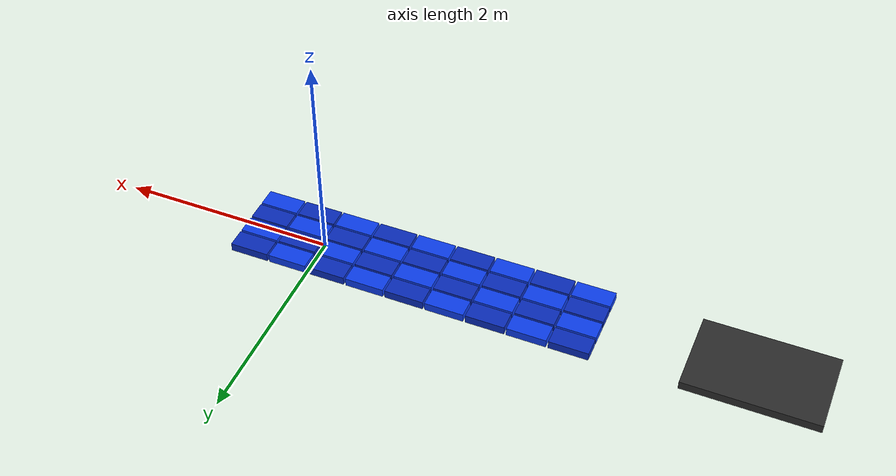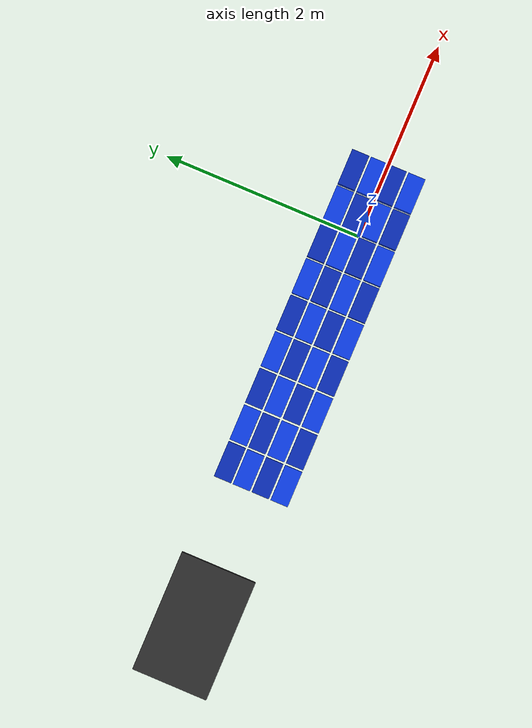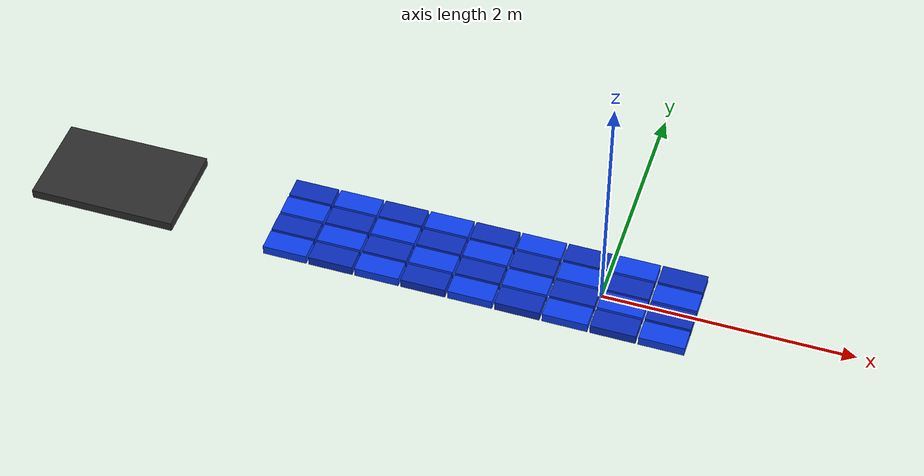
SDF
<sdf version="1.10">
 <world name="matrix_14x4_stream">
  <model name="infeed_conveyor">
   <static>true</static>
   <pose>-4.030000 0.000000 0 0 0 0</pose>
   <link name="belt">
    <pose>0 0 0.040000 0 0 0</pose>
    <collision name="belt_collision">
     <max_contacts>8</max_contacts>
     <geometry><box><size>1.200000 0.760000 0.080000</size></box></geometry>
     <surface><friction><ode><mu>0.8</mu><mu2>0.8</mu2><fdir1>1 0 0</fdir1></ode></friction></surface>
    </collision>
    <visual name="belt_visual">
     <geometry><box><size>1.200000 0.760000 0.080000</size></box></geometry>
     <material><ambient>0.180 0.180 0.180 1</ambient><diffuse>0.180 0.180 0.180 1</diffuse></material>
    </visual>
   </link>
   <plugin filename="gz-sim-track-controller-system" name="gz::sim::systems::TrackController">
    <link>belt</link>
    <track_orientation>0 0 0</track_orientation>
    <velocity_topic>/singulator/infeed/cmd_vel</velocity_topic>
    <odometry_topic>/singulator/infeed/odometry</odometry_topic>
    <odometry_publish_frequency>1</odometry_publish_frequency>
    <min_velocity>-3.0</min_velocity>
    <max_velocity>3.0</max_velocity>
    <min_acceleration>-6.0</min_acceleration>
    <max_acceleration>6.0</max_acceleration>
    <min_jerk>-30.0</min_jerk>
    <max_jerk>30.0</max_jerk>
    <max_command_age>2.0</max_command_age>
   </plugin>
  </model>
  <model name="cell_r00_c00">
   <static>true</static>
   <pose>-2.470000 -0.292500 0 0 0 0</pose>
   <link name="belt">
    <pose>0 0 0.040000 0 0 0</pose>
    <collision name="belt_collision">
     <max_contacts>8</max_contacts>
     <geometry><box><size>0.360000 0.175000 0.080000</size></box></geometry>
     <surface><friction><ode><mu>0.8</mu><mu2>0.8</mu2><fdir1>1 0 0</fdir1></ode></friction></surface>
    </collision>
    <visual name="belt_visual">
     <geometry><box><size>0.360000 0.175000 0.080000</size></box></geometry>
     <material><ambient>0.050 0.250 0.950 1</ambient><diffuse>0.050 0.250 0.950 1</diffuse></material>
    </visual>
   </link>
   <plugin filename="gz-sim-track-controller-system" name="gz::sim::systems::TrackController">
    <link>belt</link>
    <track_orientation>0 0 0</track_orientation>
    <velocity_topic>/singulator/cell/r00_c00/cmd_vel</velocity_topic>
    <odometry_topic>/singulator/cell/r00_c00/odometry</odometry_topic>
    <odometry_publish_frequency>1</odometry_publish_frequency>
    <min_velocity>-3.0</min_velocity>
    <max_velocity>3.0</max_velocity>
    <min_acceleration>-6.0</min_acceleration>
    <max_acceleration>6.0</max_acceleration>
    <min_jerk>-30.0</min_jerk>
    <max_jerk>30.0</max_jerk>
    <max_command_age>2.0</max_command_age>
   </plugin>
  </model>
  <model name="cell_r00_c01">
   <static>true</static>
   <pose>-2.470000 -0.097500 0 0 0 0</pose>
   <link name="belt">
    <pose>0 0 0.040000 0 0 0</pose>
    <collision name="belt_collision">
     <max_contacts>8</max_contacts>
     <geometry><box><size>0.360000 0.175000 0.080000</size></box></geometry>
     <surface><friction><ode><mu>0.8</mu><mu2>0.8</mu2><fdir1>1 0 0</fdir1></ode></friction></surface>
    </collision>
    <visual name="belt_visual">
     <geometry><box><size>0.360000 0.175000 0.080000</size></box></geometry>
     <material><ambient>0.040 0.180 0.750 1</ambient><diffuse>0.040 0.180 0.750 1</diffuse></material>
    </visual>
   </link>
   <plugin filename="gz-sim-track-controller-system" name="gz::sim::systems::TrackController">
    <link>belt</link>
    <track_orientation>0 0 0</track_orientation>
    <velocity_topic>/singulator/cell/r00_c01/cmd_vel</velocity_topic>
    <odometry_topic>/singulator/cell/r00_c01/odometry</odometry_topic>
    <odometry_publish_frequency>1</odometry_publish_frequency>
    <min_velocity>-3.0</min_velocity>
    <max_velocity>3.0</max_velocity>
    <min_acceleration>-6.0</min_acceleration>
    <max_acceleration>6.0</max_acceleration>
    <min_jerk>-30.0</min_jerk>
    <max_jerk>30.0</max_jerk>
    <max_command_age>2.0</max_command_age>
   </plugin>
  </model>
  <model name="cell_r00_c02">
   <static>true</static>
   <pose>-2.470000 0.097500 0 0 0 0</pose>
   <link name="belt">
    <pose>0 0 0.040000 0 0 0</pose>
    <collision name="belt_collision">
     <max_contacts>8</max_contacts>
     <geometry><box><size>0.360000 0.175000 0.080000</size></box></geometry>
     <surface><friction><ode><mu>0.8</mu><mu2>0.8</mu2><fdir1>1 0 0</fdir1></ode></friction></surface>
    </collision>
    <visual name="belt_visual">
     <geometry><box><size>0.360000 0.175000 0.080000</size></box></geometry>
     <material><ambient>0.050 0.250 0.950 1</ambient><diffuse>0.050 0.250 0.950 1</diffuse></material>
    </visual>
   </link>
   <plugin filename="gz-sim-track-controller-system" name="gz::sim::systems::TrackController">
    <link>belt</link>
    <track_orientation>0 0 0</track_orientation>
    <velocity_topic>/singulator/cell/r00_c02/cmd_vel</velocity_topic>
    <odometry_topic>/singulator/cell/r00_c02/odometry</odometry_topic>
    <odometry_publish_frequency>1</odometry_publish_frequency>
    <min_velocity>-3.0</min_velocity>
    <max_velocity>3.0</max_velocity>
    <min_acceleration>-6.0</min_acceleration>
    <max_acceleration>6.0</max_acceleration>
    <min_jerk>-30.0</min_jerk>
    <max_jerk>30.0</max_jerk>
    <max_command_age>2.0</max_command_age>
   </plugin>
  </model>
  <model name="cell_r00_c03">
   <static>true</static>
   <pose>-2.470000 0.292500 0 0 0 0</pose>
   <link name="belt">
    <pose>0 0 0.040000 0 0 0</pose>
    <collision name="belt_collision">
     <max_contacts>8</max_contacts>
     <geometry><box><size>0.360000 0.175000 0.080000</size></box></geometry>
     <surface><friction><ode><mu>0.8</mu><mu2>0.8</mu2><fdir1>1 0 0</fdir1></ode></friction></surface>
    </collision>
    <visual name="belt_visual">
     <geometry><box><size>0.360000 0.175000 0.080000</size></box></geometry>
     <material><ambient>0.040 0.180 0.750 1</ambient><diffuse>0.040 0.180 0.750 1</diffuse></material>
    </visual>
   </link>
   <plugin filename="gz-sim-track-controller-system" name="gz::sim::systems::TrackController">
    <link>belt</link>
    <track_orientation>0 0 0</track_orientation>
    <velocity_topic>/singulator/cell/r00_c03/cmd_vel</velocity_topic>
    <odometry_topic>/singulator/cell/r00_c03/odometry</odometry_topic>
    <odometry_publish_frequency>1</odometry_publish_frequency>
    <min_velocity>-3.0</min_velocity>
    <max_velocity>3.0</max_velocity>
    <min_acceleration>-6.0</min_acceleration>
    <max_acceleration>6.0</max_acceleration>
    <min_jerk>-30.0</min_jerk>
    <max_jerk>30.0</max_jerk>
    <max_command_age>2.0</max_command_age>
   </plugin>
  </model>
  <model name="cell_r01_c00">
   <static>true</static>
   <pose>-2.090000 -0.292500 0 0 0 0</pose>
   <link name="belt">
    <pose>0 0 0.040000 0 0 0</pose>
    <collision name="belt_collision">
     <max_contacts>8</max_contacts>
     <geometry><box><size>0.360000 0.175000 0.080000</size></box></geometry>
     <surface><friction><ode><mu>0.8</mu><mu2>0.8</mu2><fdir1>1 0 0</fdir1></ode></friction></surface>
    </collision>
    <visual name="belt_visual">
     <geometry><box><size>0.360000 0.175000 0.080000</size></box></geometry>
     <material><ambient>0.040 0.180 0.750 1</ambient><diffuse>0.040 0.180 0.750 1</diffuse></material>
    </visual>
   </link>
   <plugin filename="gz-sim-track-controller-system" name="gz::sim::systems::TrackController">
    <link>belt</link>
    <track_orientation>0 0 0</track_orientation>
    <velocity_topic>/singulator/cell/r01_c00/cmd_vel</velocity_topic>
    <odometry_topic>/singulator/cell/r01_c00/odometry</odometry_topic>
    <odometry_publish_frequency>1</odometry_publish_frequency>
    <min_velocity>-3.0</min_velocity>
    <max_velocity>3.0</max_velocity>
    <min_acceleration>-6.0</min_acceleration>
    <max_acceleration>6.0</max_acceleration>
    <min_jerk>-30.0</min_jerk>
    <max_jerk>30.0</max_jerk>
    <max_command_age>2.0</max_command_age>
   </plugin>
  </model>
  <model name="cell_r01_c01">
   <static>true</static>
   <pose>-2.090000 -0.097500 0 0 0 0</pose>
   <link name="belt">
    <pose>0 0 0.040000 0 0 0</pose>
    <collision name="belt_collision">
     <max_contacts>8</max_contacts>
     <geometry><box><size>0.360000 0.175000 0.080000</size></box></geometry>
     <surface><friction><ode><mu>0.8</mu><mu2>0.8</mu2><fdir1>1 0 0</fdir1></ode></friction></surface>
    </collision>
    <visual name="belt_visual">
     <geometry><box><size>0.360000 0.175000 0.080000</size></box></geometry>
     <material><ambient>0.050 0.250 0.950 1</ambient><diffuse>0.050 0.250 0.950 1</diffuse></material>
    </visual>
   </link>
   <plugin filename="gz-sim-track-controller-system" name="gz::sim::systems::TrackController">
    <link>belt</link>
    <track_orientation>0 0 0</track_orientation>
    <velocity_topic>/singulator/cell/r01_c01/cmd_vel</velocity_topic>
    <odometry_topic>/singulator/cell/r01_c01/odometry</odometry_topic>
    <odometry_publish_frequency>1</odometry_publish_frequency>
    <min_velocity>-3.0</min_velocity>
    <max_velocity>3.0</max_velocity>
    <min_acceleration>-6.0</min_acceleration>
    <max_acceleration>6.0</max_acceleration>
    <min_jerk>-30.0</min_jerk>
    <max_jerk>30.0</max_jerk>
    <max_command_age>2.0</max_command_age>
   </plugin>
  </model>
  <model name="cell_r01_c02">
   <static>true</static>
   <pose>-2.090000 0.097500 0 0 0 0</pose>
   <link name="belt">
    <pose>0 0 0.040000 0 0 0</pose>
    <collision name="belt_collision">
     <max_contacts>8</max_contacts>
     <geometry><box><size>0.360000 0.175000 0.080000</size></box></geometry>
     <surface><friction><ode><mu>0.8</mu><mu2>0.8</mu2><fdir1>1 0 0</fdir1></ode></friction></surface>
    </collision>
    <visual name="belt_visual">
     <geometry><box><size>0.360000 0.175000 0.080000</size></box></geometry>
     <material><ambient>0.040 0.180 0.750 1</ambient><diffuse>0.040 0.180 0.750 1</diffuse></material>
    </visual>
   </link>
   <plugin filename="gz-sim-track-controller-system" name="gz::sim::systems::TrackController">
    <link>belt</link>
    <track_orientation>0 0 0</track_orientation>
    <velocity_topic>/singulator/cell/r01_c02/cmd_vel</velocity_topic>
    <odometry_topic>/singulator/cell/r01_c02/odometry</odometry_topic>
    <odometry_publish_frequency>1</odometry_publish_frequency>
    <min_velocity>-3.0</min_velocity>
    <max_velocity>3.0</max_velocity>
    <min_acceleration>-6.0</min_acceleration>
    <max_acceleration>6.0</max_acceleration>
    <min_jerk>-30.0</min_jerk>
    <max_jerk>30.0</max_jerk>
    <max_command_age>2.0</max_command_age>
   </plugin>
  </model>
  <model name="cell_r01_c03">
   <static>true</static>
   <pose>-2.090000 0.292500 0 0 0 0</pose>
   <link name="belt">
    <pose>0 0 0.040000 0 0 0</pose>
    <collision name="belt_collision">
     <max_contacts>8</max_contacts>
     <geometry><box><size>0.360000 0.175000 0.080000</size></box></geometry>
     <surface><friction><ode><mu>0.8</mu><mu2>0.8</mu2><fdir1>1 0 0</fdir1></ode></friction></surface>
    </collision>
    <visual name="belt_visual">
     <geometry><box><size>0.360000 0.175000 0.080000</size></box></geometry>
     <material><ambient>0.050 0.250 0.950 1</ambient><diffuse>0.050 0.250 0.950 1</diffuse></material>
    </visual>
   </link>
   <plugin filename="gz-sim-track-controller-system" name="gz::sim::systems::TrackController">
    <link>belt</link>
    <track_orientation>0 0 0</track_orientation>
    <velocity_topic>/singulator/cell/r01_c03/cmd_vel</velocity_topic>
    <odometry_topic>/singulator/cell/r01_c03/odometry</odometry_topic>
    <odometry_publish_frequency>1</odometry_publish_frequency>
    <min_velocity>-3.0</min_velocity>
    <max_velocity>3.0</max_velocity>
    <min_acceleration>-6.0</min_acceleration>
    <max_acceleration>6.0</max_acceleration>
    <min_jerk>-30.0</min_jerk>
    <max_jerk>30.0</max_jerk>
    <max_command_age>2.0</max_command_age>
   </plugin>
  </model>
  <model name="cell_r02_c00">
   <static>true</static>
   <pose>-1.710000 -0.292500 0 0 0 0</pose>
   <link name="belt">
    <pose>0 0 0.040000 0 0 0</pose>
    <collision name="belt_collision">
     <max_contacts>8</max_contacts>
     <geometry><box><size>0.360000 0.175000 0.080000</size></box></geometry>
     <surface><friction><ode><mu>0.8</mu><mu2>0.8</mu2><fdir1>1 0 0</fdir1></ode></friction></surface>
    </collision>
    <visual name="belt_visual">
     <geometry><box><size>0.360000 0.175000 0.080000</size></box></geometry>
     <material><ambient>0.050 0.250 0.950 1</ambient><diffuse>0.050 0.250 0.950 1</diffuse></material>
    </visual>
   </link>
   <plugin filename="gz-sim-track-controller-system" name="gz::sim::systems::TrackController">
    <link>belt</link>
    <track_orientation>0 0 0</track_orientation>
    <velocity_topic>/singulator/cell/r02_c00/cmd_vel</velocity_topic>
    <odometry_topic>/singulator/cell/r02_c00/odometry</odometry_topic>
    <odometry_publish_frequency>1</odometry_publish_frequency>
    <min_velocity>-3.0</min_velocity>
    <max_velocity>3.0</max_velocity>
    <min_acceleration>-6.0</min_acceleration>
    <max_acceleration>6.0</max_acceleration>
    <min_jerk>-30.0</min_jerk>
    <max_jerk>30.0</max_jerk>
    <max_command_age>2.0</max_command_age>
   </plugin>
  </model>
  <model name="cell_r02_c01">
   <static>true</static>
   <pose>-1.710000 -0.097500 0 0 0 0</pose>
   <link name="belt">
    <pose>0 0 0.040000 0 0 0</pose>
    <collision name="belt_collision">
     <max_contacts>8</max_contacts>
     <geometry><box><size>0.360000 0.175000 0.080000</size></box></geometry>
     <surface><friction><ode><mu>0.8</mu><mu2>0.8</mu2><fdir1>1 0 0</fdir1></ode></friction></surface>
    </collision>
    <visual name="belt_visual">
     <geometry><box><size>0.360000 0.175000 0.080000</size></box></geometry>
     <material><ambient>0.040 0.180 0.750 1</ambient><diffuse>0.040 0.180 0.750 1</diffuse></material>
    </visual>
   </link>
   <plugin filename="gz-sim-track-controller-system" name="gz::sim::systems::TrackController">
    <link>belt</link>
    <track_orientation>0 0 0</track_orientation>
    <velocity_topic>/singulator/cell/r02_c01/cmd_vel</velocity_topic>
    <odometry_topic>/singulator/cell/r02_c01/odometry</odometry_topic>
    <odometry_publish_frequency>1</odometry_publish_frequency>
    <min_velocity>-3.0</min_velocity>
    <max_velocity>3.0</max_velocity>
    <min_acceleration>-6.0</min_acceleration>
    <max_acceleration>6.0</max_acceleration>
    <min_jerk>-30.0</min_jerk>
    <max_jerk>30.0</max_jerk>
    <max_command_age>2.0</max_command_age>
   </plugin>
  </model>
  <model name="cell_r02_c02">
   <static>true</static>
   <pose>-1.710000 0.097500 0 0 0 0</pose>
   <link name="belt">
    <pose>0 0 0.040000 0 0 0</pose>
    <collision name="belt_collision">
     <max_contacts>8</max_contacts>
     <geometry><box><size>0.360000 0.175000 0.080000</size></box></geometry>
     <surface><friction><ode><mu>0.8</mu><mu2>0.8</mu2><fdir1>1 0 0</fdir1></ode></friction></surface>
    </collision>
    <visual name="belt_visual">
     <geometry><box><size>0.360000 0.175000 0.080000</size></box></geometry>
     <material><ambient>0.050 0.250 0.950 1</ambient><diffuse>0.050 0.250 0.950 1</diffuse></material>
    </visual>
   </link>
   <plugin filename="gz-sim-track-controller-system" name="gz::sim::systems::TrackController">
    <link>belt</link>
    <track_orientation>0 0 0</track_orientation>
    <velocity_topic>/singulator/cell/r02_c02/cmd_vel</velocity_topic>
    <odometry_topic>/singulator/cell/r02_c02/odometry</odometry_topic>
    <odometry_publish_frequency>1</odometry_publish_frequency>
    <min_velocity>-3.0</min_velocity>
    <max_velocity>3.0</max_velocity>
    <min_acceleration>-6.0</min_acceleration>
    <max_acceleration>6.0</max_acceleration>
    <min_jerk>-30.0</min_jerk>
    <max_jerk>30.0</max_jerk>
    <max_command_age>2.0</max_command_age>
   </plugin>
  </model>
  <model name="cell_r02_c03">
   <static>true</static>
   <pose>-1.710000 0.292500 0 0 0 0</pose>
   <link name="belt">
    <pose>0 0 0.040000 0 0 0</pose>
    <collision name="belt_collision">
     <max_contacts>8</max_contacts>
     <geometry><box><size>0.360000 0.175000 0.080000</size></box></geometry>
     <surface><friction><ode><mu>0.8</mu><mu2>0.8</mu2><fdir1>1 0 0</fdir1></ode></friction></surface>
    </collision>
    <visual name="belt_visual">
     <geometry><box><size>0.360000 0.175000 0.080000</size></box></geometry>
     <material><ambient>0.040 0.180 0.750 1</ambient><diffuse>0.040 0.180 0.750 1</diffuse></material>
    </visual>
   </link>
   <plugin filename="gz-sim-track-controller-system" name="gz::sim::systems::TrackController">
    <link>belt</link>
    <track_orientation>0 0 0</track_orientation>
    <velocity_topic>/singulator/cell/r02_c03/cmd_vel</velocity_topic>
    <odometry_topic>/singulator/cell/r02_c03/odometry</odometry_topic>
    <odometry_publish_frequency>1</odometry_publish_frequency>
    <min_velocity>-3.0</min_velocity>
    <max_velocity>3.0</max_velocity>
    <min_acceleration>-6.0</min_acceleration>
    <max_acceleration>6.0</max_acceleration>
    <min_jerk>-30.0</min_jerk>
    <max_jerk>30.0</max_jerk>
    <max_command_age>2.0</max_command_age>
   </plugin>
  </model>
  <model name="cell_r03_c00">
   <static>true</static>
   <pose>-1.330000 -0.292500 0 0 0 0</pose>
   <link name="belt">
    <pose>0 0 0.040000 0 0 0</pose>
    <collision name="belt_collision">
     <max_contacts>8</max_contacts>
     <geometry><box><size>0.360000 0.175000 0.080000</size></box></geometry>
     <surface><friction><ode><mu>0.8</mu><mu2>0.8</mu2><fdir1>1 0 0</fdir1></ode></friction></surface>
    </collision>
    <visual name="belt_visual">
     <geometry><box><size>0.360000 0.175000 0.080000</size></box></geometry>
     <material><ambient>0.040 0.180 0.750 1</ambient><diffuse>0.040 0.180 0.750 1</diffuse></material>
    </visual>
   </link>
   <plugin filename="gz-sim-track-controller-system" name="gz::sim::systems::TrackController">
    <link>belt</link>
    <track_orientation>0 0 0</track_orientation>
    <velocity_topic>/singulator/cell/r03_c00/cmd_vel</velocity_topic>
    <odometry_topic>/singulator/cell/r03_c00/odometry</odometry_topic>
    <odometry_publish_frequency>1</odometry_publish_frequency>
    <min_velocity>-3.0</min_velocity>
    <max_velocity>3.0</max_velocity>
    <min_acceleration>-6.0</min_acceleration>
    <max_acceleration>6.0</max_acceleration>
    <min_jerk>-30.0</min_jerk>
    <max_jerk>30.0</max_jerk>
    <max_command_age>2.0</max_command_age>
   </plugin>
  </model>
  <model name="cell_r03_c01">
   <static>true</static>
   <pose>-1.330000 -0.097500 0 0 0 0</pose>
   <link name="belt">
    <pose>0 0 0.040000 0 0 0</pose>
    <collision name="belt_collision">
     <max_contacts>8</max_contacts>
     <geometry><box><size>0.360000 0.175000 0.080000</size></box></geometry>
     <surface><friction><ode><mu>0.8</mu><mu2>0.8</mu2><fdir1>1 0 0</fdir1></ode></friction></surface>
    </collision>
    <visual name="belt_visual">
     <geometry><box><size>0.360000 0.175000 0.080000</size></box></geometry>
     <material><ambient>0.050 0.250 0.950 1</ambient><diffuse>0.050 0.250 0.950 1</diffuse></material>
    </visual>
   </link>
   <plugin filename="gz-sim-track-controller-system" name="gz::sim::systems::TrackController">
    <link>belt</link>
    <track_orientation>0 0 0</track_orientation>
    <velocity_topic>/singulator/cell/r03_c01/cmd_vel</velocity_topic>
    <odometry_topic>/singulator/cell/r03_c01/odometry</odometry_topic>
    <odometry_publish_frequency>1</odometry_publish_frequency>
    <min_velocity>-3.0</min_velocity>
    <max_velocity>3.0</max_velocity>
    <min_acceleration>-6.0</min_acceleration>
    <max_acceleration>6.0</max_acceleration>
    <min_jerk>-30.0</min_jerk>
    <max_jerk>30.0</max_jerk>
    <max_command_age>2.0</max_command_age>
   </plugin>
  </model>
  <model name="cell_r03_c02">
   <static>true</static>
   <pose>-1.330000 0.097500 0 0 0 0</pose>
   <link name="belt">
    <pose>0 0 0.040000 0 0 0</pose>
    <collision name="belt_collision">
     <max_contacts>8</max_contacts>
     <geometry><box><size>0.360000 0.175000 0.080000</size></box></geometry>
     <surface><friction><ode><mu>0.8</mu><mu2>0.8</mu2><fdir1>1 0 0</fdir1></ode></friction></surface>
    </collision>
    <visual name="belt_visual">
     <geometry><box><size>0.360000 0.175000 0.080000</size></box></geometry>
     <material><ambient>0.040 0.180 0.750 1</ambient><diffuse>0.040 0.180 0.750 1</diffuse></material>
    </visual>
   </link>
   <plugin filename="gz-sim-track-controller-system" name="gz::sim::systems::TrackController">
    <link>belt</link>
    <track_orientation>0 0 0</track_orientation>
    <velocity_topic>/singulator/cell/r03_c02/cmd_vel</velocity_topic>
    <odometry_topic>/singulator/cell/r03_c02/odometry</odometry_topic>
    <odometry_publish_frequency>1</odometry_publish_frequency>
    <min_velocity>-3.0</min_velocity>
    <max_velocity>3.0</max_velocity>
    <min_acceleration>-6.0</min_acceleration>
    <max_acceleration>6.0</max_acceleration>
    <min_jerk>-30.0</min_jerk>
    <max_jerk>30.0</max_jerk>
    <max_command_age>2.0</max_command_age>
   </plugin>
  </model>
  <model name="cell_r03_c03">
   <static>true</static>
   <pose>-1.330000 0.292500 0 0 0 0</pose>
   <link name="belt">
    <pose>0 0 0.040000 0 0 0</pose>
    <collision name="belt_collision">
     <max_contacts>8</max_contacts>
     <geometry><box><size>0.360000 0.175000 0.080000</size></box></geometry>
     <surface><friction><ode><mu>0.8</mu><mu2>0.8</mu2><fdir1>1 0 0</fdir1></ode></friction></surface>
    </collision>
    <visual name="belt_visual">
     <geometry><box><size>0.360000 0.175000 0.080000</size></box></geometry>
     <material><ambient>0.050 0.250 0.950 1</ambient><diffuse>0.050 0.250 0.950 1</diffuse></material>
    </visual>
   </link>
   <plugin filename="gz-sim-track-controller-system" name="gz::sim::systems::TrackController">
    <link>belt</link>
    <track_orientation>0 0 0</track_orientation>
    <velocity_topic>/singulator/cell/r03_c03/cmd_vel</velocity_topic>
    <odometry_topic>/singulator/cell/r03_c03/odometry</odometry_topic>
    <odometry_publish_frequency>1</odometry_publish_frequency>
    <min_velocity>-3.0</min_velocity>
    <max_velocity>3.0</max_velocity>
    <min_acceleration>-6.0</min_acceleration>
    <max_acceleration>6.0</max_acceleration>
    <min_jerk>-30.0</min_jerk>
    <max_jerk>30.0</max_jerk>
    <max_command_age>2.0</max_command_age>
   </plugin>
  </model>
  <model name="cell_r04_c00">
   <static>true</static>
   <pose>-0.950000 -0.292500 0 0 0 0</pose>
   <link name="belt">
    <pose>0 0 0.040000 0 0 0</pose>
    <collision name="belt_collision">
     <max_contacts>8</max_contacts>
     <geometry><box><size>0.360000 0.175000 0.080000</size></box></geometry>
     <surface><friction><ode><mu>0.8</mu><mu2>0.8</mu2><fdir1>1 0 0</fdir1></ode></friction></surface>
    </collision>
    <visual name="belt_visual">
     <geometry><box><size>0.360000 0.175000 0.080000</size></box></geometry>
     <material><ambient>0.050 0.250 0.950 1</ambient><diffuse>0.050 0.250 0.950 1</diffuse></material>
    </visual>
   </link>
   <plugin filename="gz-sim-track-controller-system" name="gz::sim::systems::TrackController">
    <link>belt</link>
    <track_orientation>0 0 0</track_orientation>
    <velocity_topic>/singulator/cell/r04_c00/cmd_vel</velocity_topic>
    <odometry_topic>/singulator/cell/r04_c00/odometry</odometry_topic>
    <odometry_publish_frequency>1</odometry_publish_frequency>
    <min_velocity>-3.0</min_velocity>
    <max_velocity>3.0</max_velocity>
    <min_acceleration>-6.0</min_acceleration>
    <max_acceleration>6.0</max_acceleration>
    <min_jerk>-30.0</min_jerk>
    <max_jerk>30.0</max_jerk>
    <max_command_age>2.0</max_command_age>
   </plugin>
  </model>
  <model name="cell_r04_c01">
   <static>true</static>
   <pose>-0.950000 -0.097500 0 0 0 0</pose>
   <link name="belt">
    <pose>0 0 0.040000 0 0 0</pose>
    <collision name="belt_collision">
     <max_contacts>8</max_contacts>
     <geometry><box><size>0.360000 0.175000 0.080000</size></box></geometry>
     <surface><friction><ode><mu>0.8</mu><mu2>0.8</mu2><fdir1>1 0 0</fdir1></ode></friction></surface>
    </collision>
    <visual name="belt_visual">
     <geometry><box><size>0.360000 0.175000 0.080000</size></box></geometry>
     <material><ambient>0.040 0.180 0.750 1</ambient><diffuse>0.040 0.180 0.750 1</diffuse></material>
    </visual>
   </link>
   <plugin filename="gz-sim-track-controller-system" name="gz::sim::systems::TrackController">
    <link>belt</link>
    <track_orientation>0 0 0</track_orientation>
    <velocity_topic>/singulator/cell/r04_c01/cmd_vel</velocity_topic>
    <odometry_topic>/singulator/cell/r04_c01/odometry</odometry_topic>
    <odometry_publish_frequency>1</odometry_publish_frequency>
    <min_velocity>-3.0</min_velocity>
    <max_velocity>3.0</max_velocity>
    <min_acceleration>-6.0</min_acceleration>
    <max_acceleration>6.0</max_acceleration>
    <min_jerk>-30.0</min_jerk>
    <max_jerk>30.0</max_jerk>
    <max_command_age>2.0</max_command_age>
   </plugin>
  </model>
  <model name="cell_r04_c02">
   <static>true</static>
   <pose>-0.950000 0.097500 0 0 0 0</pose>
   <link name="belt">
    <pose>0 0 0.040000 0 0 0</pose>
    <collision name="belt_collision">
     <max_contacts>8</max_contacts>
     <geometry><box><size>0.360000 0.175000 0.080000</size></box></geometry>
     <surface><friction><ode><mu>0.8</mu><mu2>0.8</mu2><fdir1>1 0 0</fdir1></ode></friction></surface>
    </collision>
    <visual name="belt_visual">
     <geometry><box><size>0.360000 0.175000 0.080000</size></box></geometry>
     <material><ambient>0.050 0.250 0.950 1</ambient><diffuse>0.050 0.250 0.950 1</diffuse></material>
    </visual>
   </link>
   <plugin filename="gz-sim-track-controller-system" name="gz::sim::systems::TrackController">
    <link>belt</link>
    <track_orientation>0 0 0</track_orientation>
    <velocity_topic>/singulator/cell/r04_c02/cmd_vel</velocity_topic>
    <odometry_topic>/singulator/cell/r04_c02/odometry</odometry_topic>
    <odometry_publish_frequency>1</odometry_publish_frequency>
    <min_velocity>-3.0</min_velocity>
    <max_velocity>3.0</max_velocity>
    <min_acceleration>-6.0</min_acceleration>
    <max_acceleration>6.0</max_acceleration>
    <min_jerk>-30.0</min_jerk>
    <max_jerk>30.0</max_jerk>
    <max_command_age>2.0</max_command_age>
   </plugin>
  </model>
  <model name="cell_r04_c03">
   <static>true</static>
   <pose>-0.950000 0.292500 0 0 0 0</pose>
   <link name="belt">
    <pose>0 0 0.040000 0 0 0</pose>
    <collision name="belt_collision">
     <max_contacts>8</max_contacts>
     <geometry><box><size>0.360000 0.175000 0.080000</size></box></geometry>
     <surface><friction><ode><mu>0.8</mu><mu2>0.8</mu2><fdir1>1 0 0</fdir1></ode></friction></surface>
    </collision>
    <visual name="belt_visual">
     <geometry><box><size>0.360000 0.175000 0.080000</size></box></geometry>
     <material><ambient>0.040 0.180 0.750 1</ambient><diffuse>0.040 0.180 0.750 1</diffuse></material>
    </visual>
   </link>
   <plugin filename="gz-sim-track-controller-system" name="gz::sim::systems::TrackController">
    <link>belt</link>
    <track_orientation>0 0 0</track_orientation>
    <velocity_topic>/singulator/cell/r04_c03/cmd_vel</velocity_topic>
    <odometry_topic>/singulator/cell/r04_c03/odometry</odometry_topic>
    <odometry_publish_frequency>1</odometry_publish_frequency>
    <min_velocity>-3.0</min_velocity>
    <max_velocity>3.0</max_velocity>
    <min_acceleration>-6.0</min_acceleration>
    <max_acceleration>6.0</max_acceleration>
    <min_jerk>-30.0</min_jerk>
    <max_jerk>30.0</max_jerk>
    <max_command_age>2.0</max_command_age>
   </plugin>
  </model>
  <model name="cell_r05_c00">
   <static>true</static>
   <pose>-0.570000 -0.292500 0 0 0 0</pose>
   <link name="belt">
    <pose>0 0 0.040000 0 0 0</pose>
    <collision name="belt_collision">
     <max_contacts>8</max_contacts>
     <geometry><box><size>0.360000 0.175000 0.080000</size></box></geometry>
     <surface><friction><ode><mu>0.8</mu><mu2>0.8</mu2><fdir1>1 0 0</fdir1></ode></friction></surface>
    </collision>
    <visual name="belt_visual">
     <geometry><box><size>0.360000 0.175000 0.080000</size></box></geometry>
     <material><ambient>0.040 0.180 0.750 1</ambient><diffuse>0.040 0.180 0.750 1</diffuse></material>
    </visual>
   </link>
   <plugin filename="gz-sim-track-controller-system" name="gz::sim::systems::TrackController">
    <link>belt</link>
    <track_orientation>0 0 0</track_orientation>
    <velocity_topic>/singulator/cell/r05_c00/cmd_vel</velocity_topic>
    <odometry_topic>/singulator/cell/r05_c00/odometry</odometry_topic>
    <odometry_publish_frequency>1</odometry_publish_frequency>
    <min_velocity>-3.0</min_velocity>
    <max_velocity>3.0</max_velocity>
    <min_acceleration>-6.0</min_acceleration>
    <max_acceleration>6.0</max_acceleration>
    <min_jerk>-30.0</min_jerk>
    <max_jerk>30.0</max_jerk>
    <max_command_age>2.0</max_command_age>
   </plugin>
  </model>
  <model name="cell_r05_c01">
   <static>true</static>
   <pose>-0.570000 -0.097500 0 0 0 0</pose>
   <link name="belt">
    <pose>0 0 0.040000 0 0 0</pose>
    <collision name="belt_collision">
     <max_contacts>8</max_contacts>
     <geometry><box><size>0.360000 0.175000 0.080000</size></box></geometry>
     <surface><friction><ode><mu>0.8</mu><mu2>0.8</mu2><fdir1>1 0 0</fdir1></ode></friction></surface>
    </collision>
    <visual name="belt_visual">
     <geometry><box><size>0.360000 0.175000 0.080000</size></box></geometry>
     <material><ambient>0.050 0.250 0.950 1</ambient><diffuse>0.050 0.250 0.950 1</diffuse></material>
    </visual>
   </link>
   <plugin filename="gz-sim-track-controller-system" name="gz::sim::systems::TrackController">
    <link>belt</link>
    <track_orientation>0 0 0</track_orientation>
    <velocity_topic>/singulator/cell/r05_c01/cmd_vel</velocity_topic>
    <odometry_topic>/singulator/cell/r05_c01/odometry</odometry_topic>
    <odometry_publish_frequency>1</odometry_publish_frequency>
    <min_velocity>-3.0</min_velocity>
    <max_velocity>3.0</max_velocity>
    <min_acceleration>-6.0</min_acceleration>
    <max_acceleration>6.0</max_acceleration>
    <min_jerk>-30.0</min_jerk>
    <max_jerk>30.0</max_jerk>
    <max_command_age>2.0</max_command_age>
   </plugin>
  </model>
  <model name="cell_r05_c02">
   <static>true</static>
   <pose>-0.570000 0.097500 0 0 0 0</pose>
   <link name="belt">
    <pose>0 0 0.040000 0 0 0</pose>
    <collision name="belt_collision">
     <max_contacts>8</max_contacts>
     <geometry><box><size>0.360000 0.175000 0.080000</size></box></geometry>
     <surface><friction><ode><mu>0.8</mu><mu2>0.8</mu2><fdir1>1 0 0</fdir1></ode></friction></surface>
    </collision>
    <visual name="belt_visual">
     <geometry><box><size>0.360000 0.175000 0.080000</size></box></geometry>
     <material><ambient>0.040 0.180 0.750 1</ambient><diffuse>0.040 0.180 0.750 1</diffuse></material>
    </visual>
   </link>
   <plugin filename="gz-sim-track-controller-system" name="gz::sim::systems::TrackController">
    <link>belt</link>
    <track_orientation>0 0 0</track_orientation>
    <velocity_topic>/singulator/cell/r05_c02/cmd_vel</velocity_topic>
    <odometry_topic>/singulator/cell/r05_c02/odometry</odometry_topic>
    <odometry_publish_frequency>1</odometry_publish_frequency>
    <min_velocity>-3.0</min_velocity>
    <max_velocity>3.0</max_velocity>
    <min_acceleration>-6.0</min_acceleration>
    <max_acceleration>6.0</max_acceleration>
    <min_jerk>-30.0</min_jerk>
    <max_jerk>30.0</max_jerk>
    <max_command_age>2.0</max_command_age>
   </plugin>
  </model>
  <model name="cell_r05_c03">
   <static>true</static>
   <pose>-0.570000 0.292500 0 0 0 0</pose>
   <link name="belt">
    <pose>0 0 0.040000 0 0 0</pose>
    <collision name="belt_collision">
     <max_contacts>8</max_contacts>
     <geometry><box><size>0.360000 0.175000 0.080000</size></box></geometry>
     <surface><friction><ode><mu>0.8</mu><mu2>0.8</mu2><fdir1>1 0 0</fdir1></ode></friction></surface>
    </collision>
    <visual name="belt_visual">
     <geometry><box><size>0.360000 0.175000 0.080000</size></box></geometry>
     <material><ambient>0.050 0.250 0.950 1</ambient><diffuse>0.050 0.250 0.950 1</diffuse></material>
    </visual>
   </link>
   <plugin filename="gz-sim-track-controller-system" name="gz::sim::systems::TrackController">
    <link>belt</link>
    <track_orientation>0 0 0</track_orientation>
    <velocity_topic>/singulator/cell/r05_c03/cmd_vel</velocity_topic>
    <odometry_topic>/singulator/cell/r05_c03/odometry</odometry_topic>
    <odometry_publish_frequency>1</odometry_publish_frequency>
    <min_velocity>-3.0</min_velocity>
    <max_velocity>3.0</max_velocity>
    <min_acceleration>-6.0</min_acceleration>
    <max_acceleration>6.0</max_acceleration>
    <min_jerk>-30.0</min_jerk>
    <max_jerk>30.0</max_jerk>
    <max_command_age>2.0</max_command_age>
   </plugin>
  </model>
  <model name="cell_r06_c00">
   <static>true</static>
   <pose>-0.190000 -0.292500 0 0 0 0</pose>
   <link name="belt">
    <pose>0 0 0.040000 0 0 0</pose>
    <collision name="belt_collision">
     <max_contacts>8</max_contacts>
     <geometry><box><size>0.360000 0.175000 0.080000</size></box></geometry>
     <surface><friction><ode><mu>0.8</mu><mu2>0.8</mu2><fdir1>1 0 0</fdir1></ode></friction></surface>
    </collision>
    <visual name="belt_visual">
     <geometry><box><size>0.360000 0.175000 0.080000</size></box></geometry>
     <material><ambient>0.050 0.250 0.950 1</ambient><diffuse>0.050 0.250 0.950 1</diffuse></material>
    </visual>
   </link>
   <plugin filename="gz-sim-track-controller-system" name="gz::sim::systems::TrackController">
    <link>belt</link>
    <track_orientation>0 0 0</track_orientation>
    <velocity_topic>/singulator/cell/r06_c00/cmd_vel</velocity_topic>
    <odometry_topic>/singulator/cell/r06_c00/odometry</odometry_topic>
    <odometry_publish_frequency>1</odometry_publish_frequency>
    <min_velocity>-3.0</min_velocity>
    <max_velocity>3.0</max_velocity>
    <min_acceleration>-6.0</min_acceleration>
    <max_acceleration>6.0</max_acceleration>
    <min_jerk>-30.0</min_jerk>
    <max_jerk>30.0</max_jerk>
    <max_command_age>2.0</max_command_age>
   </plugin>
  </model>
  <model name="cell_r06_c01">
   <static>true</static>
   <pose>-0.190000 -0.097500 0 0 0 0</pose>
   <link name="belt">
    <pose>0 0 0.040000 0 0 0</pose>
    <collision name="belt_collision">
     <max_contacts>8</max_contacts>
     <geometry><box><size>0.360000 0.175000 0.080000</size></box></geometry>
     <surface><friction><ode><mu>0.8</mu><mu2>0.8</mu2><fdir1>1 0 0</fdir1></ode></friction></surface>
    </collision>
    <visual name="belt_visual">
     <geometry><box><size>0.360000 0.175000 0.080000</size></box></geometry>
     <material><ambient>0.040 0.180 0.750 1</ambient><diffuse>0.040 0.180 0.750 1</diffuse></material>
    </visual>
   </link>
   <plugin filename="gz-sim-track-controller-system" name="gz::sim::systems::TrackController">
    <link>belt</link>
    <track_orientation>0 0 0</track_orientation>
    <velocity_topic>/singulator/cell/r06_c01/cmd_vel</velocity_topic>
    <odometry_topic>/singulator/cell/r06_c01/odometry</odometry_topic>
    <odometry_publish_frequency>1</odometry_publish_frequency>
    <min_velocity>-3.0</min_velocity>
    <max_velocity>3.0</max_velocity>
    <min_acceleration>-6.0</min_acceleration>
    <max_acceleration>6.0</max_acceleration>
    <min_jerk>-30.0</min_jerk>
    <max_jerk>30.0</max_jerk>
    <max_command_age>2.0</max_command_age>
   </plugin>
  </model>
  <model name="cell_r06_c02">
   <static>true</static>
   <pose>-0.190000 0.097500 0 0 0 0</pose>
   <link name="belt">
    <pose>0 0 0.040000 0 0 0</pose>
    <collision name="belt_collision">
     <max_contacts>8</max_contacts>
     <geometry><box><size>0.360000 0.175000 0.080000</size></box></geometry>
     <surface><friction><ode><mu>0.8</mu><mu2>0.8</mu2><fdir1>1 0 0</fdir1></ode></friction></surface>
    </collision>
    <visual name="belt_visual">
     <geometry><box><size>0.360000 0.175000 0.080000</size></box></geometry>
     <material><ambient>0.050 0.250 0.950 1</ambient><diffuse>0.050 0.250 0.950 1</diffuse></material>
    </visual>
   </link>
   <plugin filename="gz-sim-track-controller-system" name="gz::sim::systems::TrackController">
    <link>belt</link>
    <track_orientation>0 0 0</track_orientation>
    <velocity_topic>/singulator/cell/r06_c02/cmd_vel</velocity_topic>
    <odometry_topic>/singulator/cell/r06_c02/odometry</odometry_topic>
    <odometry_publish_frequency>1</odometry_publish_frequency>
    <min_velocity>-3.0</min_velocity>
    <max_velocity>3.0</max_velocity>
    <min_acceleration>-6.0</min_acceleration>
    <max_acceleration>6.0</max_acceleration>
    <min_jerk>-30.0</min_jerk>
    <max_jerk>30.0</max_jerk>
    <max_command_age>2.0</max_command_age>
   </plugin>
  </model>
  <model name="cell_r06_c03">
   <static>true</static>
   <pose>-0.190000 0.292500 0 0 0 0</pose>
   <link name="belt">
    <pose>0 0 0.040000 0 0 0</pose>
    <collision name="belt_collision">
     <max_contacts>8</max_contacts>
     <geometry><box><size>0.360000 0.175000 0.080000</size></box></geometry>
     <surface><friction><ode><mu>0.8</mu><mu2>0.8</mu2><fdir1>1 0 0</fdir1></ode></friction></surface>
    </collision>
    <visual name="belt_visual">
     <geometry><box><size>0.360000 0.175000 0.080000</size></box></geometry>
     <material><ambient>0.040 0.180 0.750 1</ambient><diffuse>0.040 0.180 0.750 1</diffuse></material>
    </visual>
   </link>
   <plugin filename="gz-sim-track-controller-system" name="gz::sim::systems::TrackController">
    <link>belt</link>
    <track_orientation>0 0 0</track_orientation>
    <velocity_topic>/singulator/cell/r06_c03/cmd_vel</velocity_topic>
    <odometry_topic>/singulator/cell/r06_c03/odometry</odometry_topic>
    <odometry_publish_frequency>1</odometry_publish_frequency>
    <min_velocity>-3.0</min_velocity>
    <max_velocity>3.0</max_velocity>
    <min_acceleration>-6.0</min_acceleration>
    <max_acceleration>6.0</max_acceleration>
    <min_jerk>-30.0</min_jerk>
    <max_jerk>30.0</max_jerk>
    <max_command_age>2.0</max_command_age>
   </plugin>
  </model>
  <model name="cell_r07_c00">
   <static>true</static>
   <pose>0.190000 -0.292500 0 0 0 0</pose>
   <link name="belt">
    <pose>0 0 0.040000 0 0 0</pose>
    <collision name="belt_collision">
     <max_contacts>8</max_contacts>
     <geometry><box><size>0.360000 0.175000 0.080000</size></box></geometry>
     <surface><friction><ode><mu>0.8</mu><mu2>0.8</mu2><fdir1>1 0 0</fdir1></ode></friction></surface>
    </collision>
    <visual name="belt_visual">
     <geometry><box><size>0.360000 0.175000 0.080000</size></box></geometry>
     <material><ambient>0.040 0.180 0.750 1</ambient><diffuse>0.040 0.180 0.750 1</diffuse></material>
    </visual>
   </link>
   <plugin filename="gz-sim-track-controller-system" name="gz::sim::systems::TrackController">
    <link>belt</link>
    <track_orientation>0 0 0</track_orientation>
    <velocity_topic>/singulator/cell/r07_c00/cmd_vel</velocity_topic>
    <odometry_topic>/singulator/cell/r07_c00/odometry</odometry_topic>
    <odometry_publish_frequency>1</odometry_publish_frequency>
    <min_velocity>-3.0</min_velocity>
    <max_velocity>3.0</max_velocity>
    <min_acceleration>-6.0</min_acceleration>
    <max_acceleration>6.0</max_acceleration>
    <min_jerk>-30.0</min_jerk>
    <max_jerk>30.0</max_jerk>
    <max_command_age>2.0</max_command_age>
   </plugin>
  </model>
  <model name="cell_r07_c01">
   <static>true</static>
   <pose>0.190000 -0.097500 0 0 0 0</pose>
   <link name="belt">
    <pose>0 0 0.040000 0 0 0</pose>
    <collision name="belt_collision">
     <max_contacts>8</max_contacts>
     <geometry><box><size>0.360000 0.175000 0.080000</size></box></geometry>
     <surface><friction><ode><mu>0.8</mu><mu2>0.8</mu2><fdir1>1 0 0</fdir1></ode></friction></surface>
    </collision>
    <visual name="belt_visual">
     <geometry><box><size>0.360000 0.175000 0.080000</size></box></geometry>
     <material><ambient>0.050 0.250 0.950 1</ambient><diffuse>0.050 0.250 0.950 1</diffuse></material>
    </visual>
   </link>
   <plugin filename="gz-sim-track-controller-system" name="gz::sim::systems::TrackController">
    <link>belt</link>
    <track_orientation>0 0 0</track_orientation>
    <velocity_topic>/singulator/cell/r07_c01/cmd_vel</velocity_topic>
    <odometry_topic>/singulator/cell/r07_c01/odometry</odometry_topic>
    <odometry_publish_frequency>1</odometry_publish_frequency>
    <min_velocity>-3.0</min_velocity>
    <max_velocity>3.0</max_velocity>
    <min_acceleration>-6.0</min_acceleration>
    <max_acceleration>6.0</max_acceleration>
    <min_jerk>-30.0</min_jerk>
    <max_jerk>30.0</max_jerk>
    <max_command_age>2.0</max_command_age>
   </plugin>
  </model>
  <model name="cell_r07_c02">
   <static>true</static>
   <pose>0.190000 0.097500 0 0 0 0</pose>
   <link name="belt">
    <pose>0 0 0.040000 0 0 0</pose>
    <collision name="belt_collision">
     <max_contacts>8</max_contacts>
     <geometry><box><size>0.360000 0.175000 0.080000</size></box></geometry>
     <surface><friction><ode><mu>0.8</mu><mu2>0.8</mu2><fdir1>1 0 0</fdir1></ode></friction></surface>
    </collision>
    <visual name="belt_visual">
     <geometry><box><size>0.360000 0.175000 0.080000</size></box></geometry>
     <material><ambient>0.040 0.180 0.750 1</ambient><diffuse>0.040 0.180 0.750 1</diffuse></material>
    </visual>
   </link>
   <plugin filename="gz-sim-track-controller-system" name="gz::sim::systems::TrackController">
    <link>belt</link>
    <track_orientation>0 0 0</track_orientation>
    <velocity_topic>/singulator/cell/r07_c02/cmd_vel</velocity_topic>
    <odometry_topic>/singulator/cell/r07_c02/odometry</odometry_topic>
    <odometry_publish_frequency>1</odometry_publish_frequency>
    <min_velocity>-3.0</min_velocity>
    <max_velocity>3.0</max_velocity>
    <min_acceleration>-6.0</min_acceleration>
    <max_acceleration>6.0</max_acceleration>
    <min_jerk>-30.0</min_jerk>
    <max_jerk>30.0</max_jerk>
    <max_command_age>2.0</max_command_age>
   </plugin>
  </model>
  <model name="cell_r07_c03">
   <static>true</static>
   <pose>0.190000 0.292500 0 0 0 0</pose>
   <link name="belt">
    <pose>0 0 0.040000 0 0 0</pose>
    <collision name="belt_collision">
     <max_contacts>8</max_contacts>
     <geometry><box><size>0.360000 0.175000 0.080000</size></box></geometry>
     <surface><friction><ode><mu>0.8</mu><mu2>0.8</mu2><fdir1>1 0 0</fdir1></ode></friction></surface>
    </collision>
    <visual name="belt_visual">
     <geometry><box><size>0.360000 0.175000 0.080000</size></box></geometry>
     <material><ambient>0.050 0.250 0.950 1</ambient><diffuse>0.050 0.250 0.950 1</diffuse></material>
    </visual>
   </link>
   <plugin filename="gz-sim-track-controller-system" name="gz::sim::systems::TrackController">
    <link>belt</link>
    <track_orientation>0 0 0</track_orientation>
    <velocity_topic>/singulator/cell/r07_c03/cmd_vel</velocity_topic>
    <odometry_topic>/singulator/cell/r07_c03/odometry</odometry_topic>
    <odometry_publish_frequency>1</odometry_publish_frequency>
    <min_velocity>-3.0</min_velocity>
    <max_velocity>3.0</max_velocity>
    <min_acceleration>-6.0</min_acceleration>
    <max_acceleration>6.0</max_acceleration>
    <min_jerk>-30.0</min_jerk>
    <max_jerk>30.0</max_jerk>
    <max_command_age>2.0</max_command_age>
   </plugin>
  </model>
  <model name="cell_r08_c00">
   <static>true</static>
   <pose>0.570000 -0.292500 0 0 0 0</pose>
   <link name="belt">
    <pose>0 0 0.040000 0 0 0</pose>
    <collision name="belt_collision">
     <max_contacts>8</max_contacts>
     <geometry><box><size>0.360000 0.175000 0.080000</size></box></geometry>
     <surface><friction><ode><mu>0.8</mu><mu2>0.8</mu2><fdir1>1 0 0</fdir1></ode></friction></surface>
    </collision>
    <visual name="belt_visual">
     <geometry><box><size>0.360000 0.175000 0.080000</size></box></geometry>
     <material><ambient>0.050 0.250 0.950 1</ambient><diffuse>0.050 0.250 0.950 1</diffuse></material>
    </visual>
   </link>
   <plugin filename="gz-sim-track-controller-system" name="gz::sim::systems::TrackController">
    <link>belt</link>
    <track_orientation>0 0 0</track_orientation>
    <velocity_topic>/singulator/cell/r08_c00/cmd_vel</velocity_topic>
    <odometry_topic>/singulator/cell/r08_c00/odometry</odometry_topic>
    <odometry_publish_frequency>1</odometry_publish_frequency>
    <min_velocity>-3.0</min_velocity>
    <max_velocity>3.0</max_velocity>
    <min_acceleration>-6.0</min_acceleration>
    <max_acceleration>6.0</max_acceleration>
    <min_jerk>-30.0</min_jerk>
    <max_jerk>30.0</max_jerk>
    <max_command_age>2.0</max_command_age>
   </plugin>
  </model>
  <model name="cell_r08_c01">
   <static>true</static>
   <pose>0.570000 -0.097500 0 0 0 0</pose>
   <link name="belt">
    <pose>0 0 0.040000 0 0 0</pose>
    <collision name="belt_collision">
     <max_contacts>8</max_contacts>
     <geometry><box><size>0.360000 0.175000 0.080000</size></box></geometry>
     <surface><friction><ode><mu>0.8</mu><mu2>0.8</mu2><fdir1>1 0 0</fdir1></ode></friction></surface>
    </collision>
    <visual name="belt_visual">
     <geometry><box><size>0.360000 0.175000 0.080000</size></box></geometry>
     <material><ambient>0.040 0.180 0.750 1</ambient><diffuse>0.040 0.180 0.750 1</diffuse></material>
    </visual>
   </link>
   <plugin filename="gz-sim-track-controller-system" name="gz::sim::systems::TrackController">
    <link>belt</link>
    <track_orientation>0 0 0</track_orientation>
    <velocity_topic>/singulator/cell/r08_c01/cmd_vel</velocity_topic>
    <odometry_topic>/singulator/cell/r08_c01/odometry</odometry_topic>
    <odometry_publish_frequency>1</odometry_publish_frequency>
    <min_velocity>-3.0</min_velocity>
    <max_velocity>3.0</max_velocity>
    <min_acceleration>-6.0</min_acceleration>
    <max_acceleration>6.0</max_acceleration>
    <min_jerk>-30.0</min_jerk>
    <max_jerk>30.0</max_jerk>
    <max_command_age>2.0</max_command_age>
   </plugin>
  </model>
  <model name="cell_r08_c02">
   <static>true</static>
   <pose>0.570000 0.097500 0 0 0 0</pose>
   <link name="belt">
    <pose>0 0 0.040000 0 0 0</pose>
    <collision name="belt_collision">
     <max_contacts>8</max_contacts>
     <geometry><box><size>0.360000 0.175000 0.080000</size></box></geometry>
     <surface><friction><ode><mu>0.8</mu><mu2>0.8</mu2><fdir1>1 0 0</fdir1></ode></friction></surface>
    </collision>
    <visual name="belt_visual">
     <geometry><box><size>0.360000 0.175000 0.080000</size></box></geometry>
     <material><ambient>0.050 0.250 0.950 1</ambient><diffuse>0.050 0.250 0.950 1</diffuse></material>
    </visual>
   </link>
   <plugin filename="gz-sim-track-controller-system" name="gz::sim::systems::TrackController">
    <link>belt</link>
    <track_orientation>0 0 0</track_orientation>
    <velocity_topic>/singulator/cell/r08_c02/cmd_vel</velocity_topic>
    <odometry_topic>/singulator/cell/r08_c02/odometry</odometry_topic>
    <odometry_publish_frequency>1</odometry_publish_frequency>
    <min_velocity>-3.0</min_velocity>
    <max_velocity>3.0</max_velocity>
    <min_acceleration>-6.0</min_acceleration>
    <max_acceleration>6.0</max_acceleration>
    <min_jerk>-30.0</min_jerk>
    <max_jerk>30.0</max_jerk>
    <max_command_age>2.0</max_command_age>
   </plugin>
  </model>
  <model name="cell_r08_c03">
   <static>true</static>
   <pose>0.570000 0.292500 0 0 0 0</pose>
   <link name="belt">
    <pose>0 0 0.040000 0 0 0</pose>
    <collision name="belt_collision">
     <max_contacts>8</max_contacts>
     <geometry><box><size>0.360000 0.175000 0.080000</size></box></geometry>
     <surface><friction><ode><mu>0.8</mu><mu2>0.8</mu2><fdir1>1 0 0</fdir1></ode></friction></surface>
    </collision>
    <visual name="belt_visual">
     <geometry><box><size>0.360000 0.175000 0.080000</size></box></geometry>
     <material><ambient>0.040 0.180 0.750 1</ambient><diffuse>0.040 0.180 0.750 1</diffuse></material>
    </visual>
   </link>
   <plugin filename="gz-sim-track-controller-system" name="gz::sim::systems::TrackController">
    <link>belt</link>
    <track_orientation>0 0 0</track_orientation>
    <velocity_topic>/singulator/cell/r08_c03/cmd_vel</velocity_topic>
    <odometry_topic>/singulator/cell/r08_c03/odometry</odometry_topic>
    <odometry_publish_frequency>1</odometry_publish_frequency>
    <min_velocity>-3.0</min_velocity>
    <max_velocity>3.0</max_velocity>
    <min_acceleration>-6.0</min_acceleration>
    <max_acceleration>6.0</max_acceleration>
    <min_jerk>-30.0</min_jerk>
    <max_jerk>30.0</max_jerk>
    <max_command_age>2.0</max_command_age>
   </plugin>
  </model>
 </world>
</sdf>
